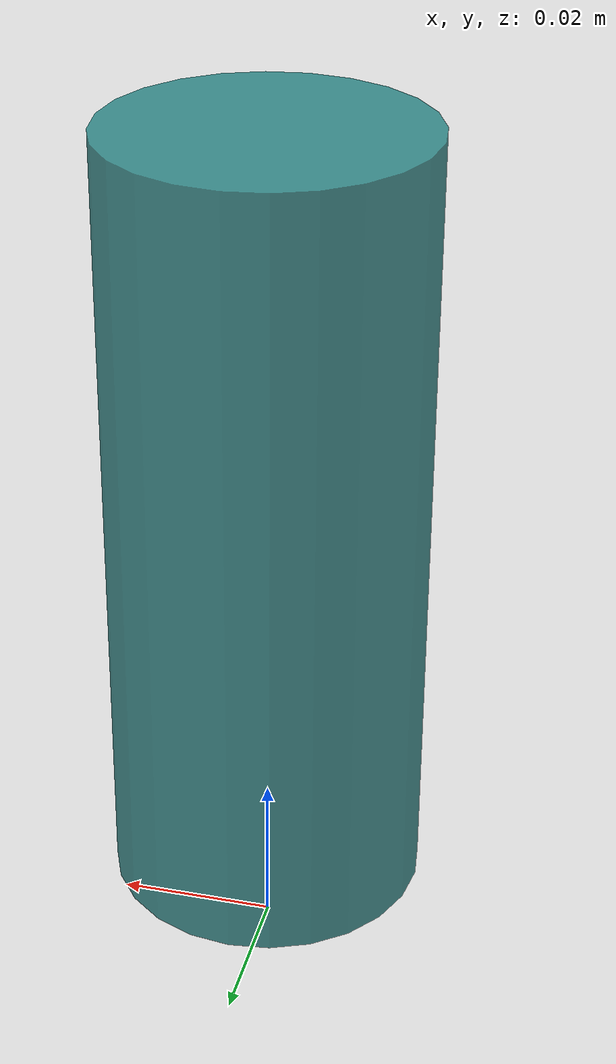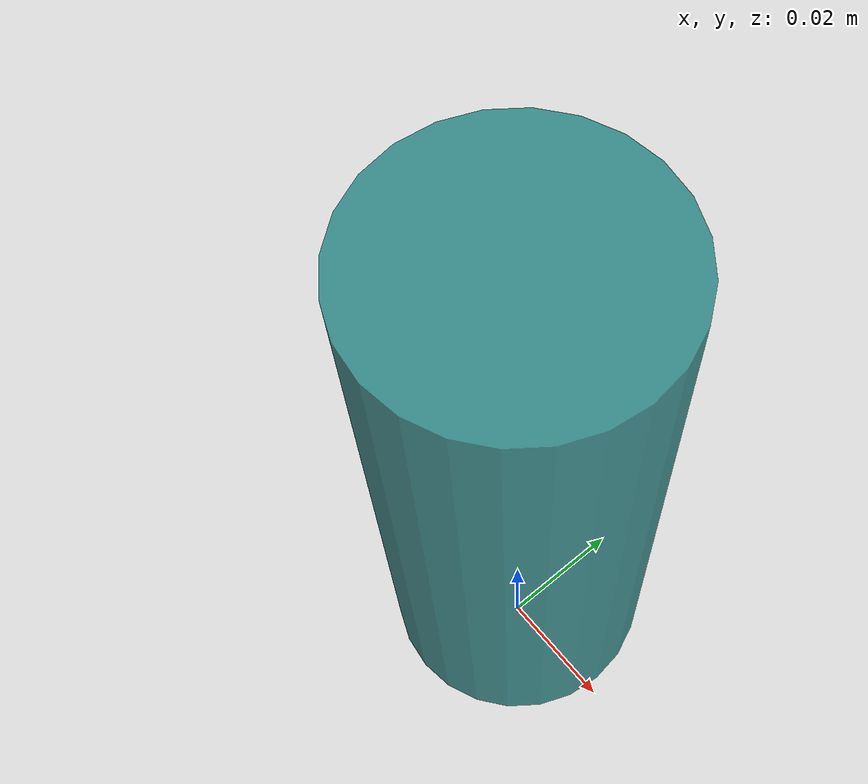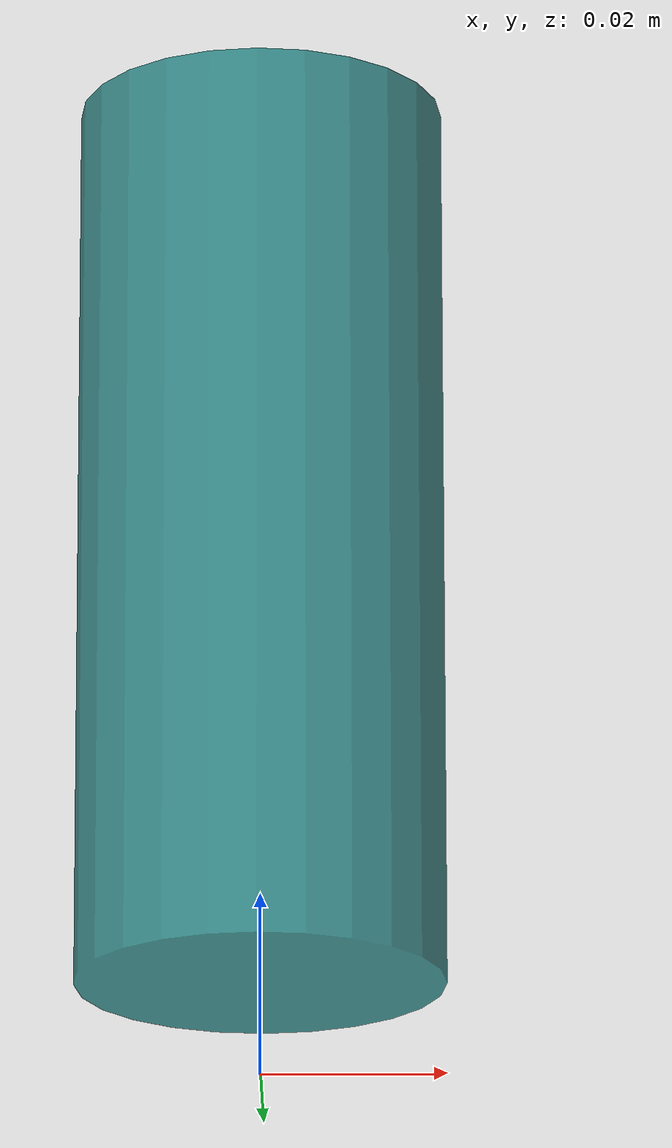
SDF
<?xml version="1.0"?>
<sdf version="1.7">

  <!-- world->ghost_body_y->ghost_body_z_sphere-->
  <model name="pusher">
    <!-- The model for a solid box of uniform density. -->
    <link name="ghost_body_y"></link>
    <joint name="y_slider" type="prismatic">
      <parent>world</parent>
      <child>ghost_body_y</child>
      <axis>
        <xyz>1 0 0</xyz>
      </axis>
    </joint>

    <joint name="z_slider" type="prismatic">
      <parent>ghost_body_y</parent>
      <child>cylinder</child>
      <axis>
        <xyz>0 1 0</xyz>
      </axis>

    </joint>

    <link name="cylinder">
      <inertial>
        <mass>0.01</mass>

        <inertia>
          <ixx>0.001</ixx>
          <ixy>0</ixy>
          <ixz>0.001</ixz>
          <iyy>1</iyy>
          <iyz>0</iyz>
          <izz>0.001</izz>
        </inertia>
      </inertial>
      <pose>0 0 0.06 0 0 0</pose>

      <visual name="visual">
        <geometry>
          <cylinder>
            <radius> 0.02 </radius>
            <length> 0.1 </length>
          </cylinder>
        </geometry>
        <material>
          <diffuse>0.1 0.5 0.5 0.8</diffuse>
        </material>
      </visual>

      <collision name="collision">
        <geometry>
          <cylinder>
            <radius> 0.02 </radius>
            <length> 0.1 </length>
          </cylinder>
        </geometry>
        <surface>
          <friction>
            <ode>
              <mu>1.0</mu>
              <mu2>1.0</mu2>
            </ode>
          </friction>
        </surface>
      </collision>
    </link>
  </model>

</sdf>
